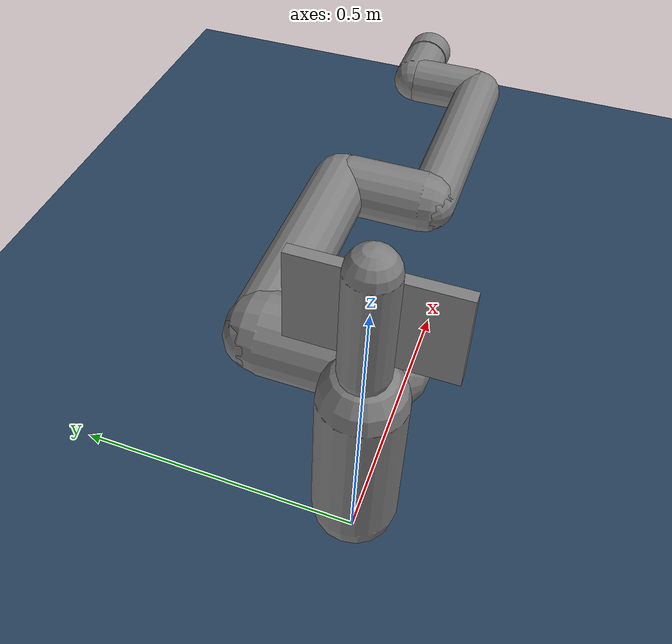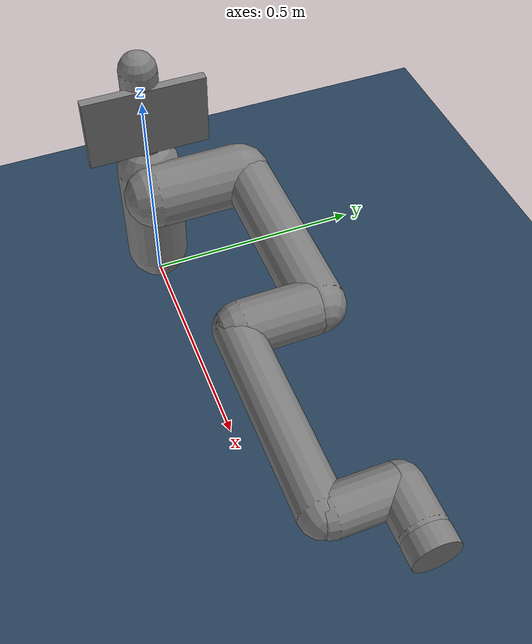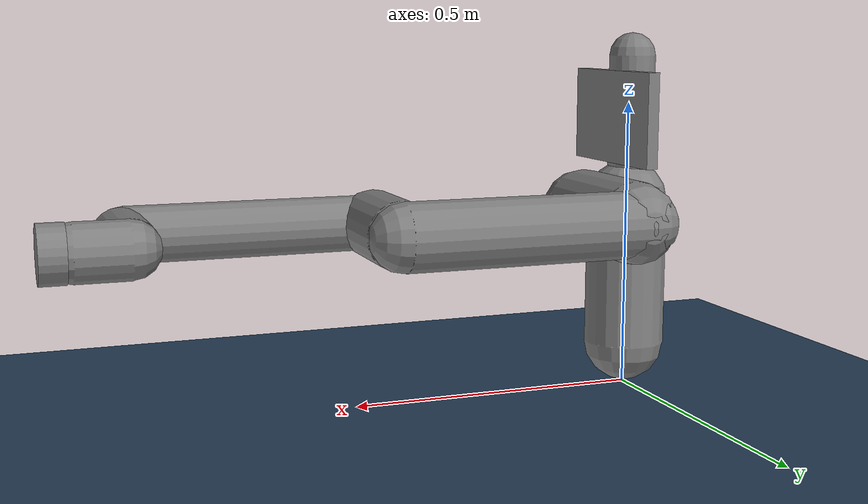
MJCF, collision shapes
<mujoco model="sawyer scene">
  <include file="sawyer_robonet.xml"/>

  <statistic center="0.3 0 0.4" extent="0.8"/>

  <visual>
    <headlight diffuse="0.6 0.6 0.6" ambient="0.3 0.3 0.3" specular="0 0 0"/>
    <rgba haze="0.15 0.25 0.35 1"/>
    <global azimuth="140" elevation="-20"/>
  </visual>

  <asset>
    <texture type="skybox" builtin="gradient" rgb1="0.3 0.5 0.7" rgb2="0 0 0" width="512" height="3072"/>
    <texture type="2d" name="groundplane" builtin="checker" mark="edge" rgb1="0.2 0.3 0.4" rgb2="0.1 0.2 0.3"
      markrgb="0.8 0.8 0.8" width="300" height="300"/>
    <material name="groundplane" texture="groundplane" texuniform="true" texrepeat="5 5" reflectance="0.2"/>
  </asset>

  <worldbody>
    <light pos="0 0 1.5" dir="0 0 -1" directional="true"/>
    <geom name="floor" size="0 0 0.05" type="plane" material="groundplane"/>
  </worldbody>
</mujoco>

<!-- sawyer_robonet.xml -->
<mujoco model="sawyer">
  <compiler angle="radian" meshdir="assets" autolimits="true"/>

  <option integrator="implicitfast"/>

  <default>
    <default class="sawyer">
      <material specular="0.5" shininess="0.25"/>
      <joint axis="0 0 1"/>
      <general dyntype="none" biastype="affine"/>
      <default class="visual">
        <geom group="2" type="mesh" contype="0" conaffinity="0"/>
      </default>
      <default class="collision">
        <geom group="3" type="capsule" rgba="0.5 0.5 0.5 1"/>
        <default class="eef_collision">
          <geom type="cylinder"/>
        </default>
      </default>
      <site size="0.001" rgba="0.5 0.5 0.5 0.3" group="4"/>

      <default class="large_joint">
        <joint frictionloss="0.3" armature="1" damping="0.1"/>
        <general gainprm="800" biasprm="0 -800 -80" forcerange="-80 80"/>
      </default>
      <default class="medium_joint">
        <joint frictionloss="0.3" armature="1" damping="0.1"/>
        <general gainprm="800" biasprm="0 -800 -80" forcerange="-40 40"/>
      </default>
      <default class="small_joint">
        <joint frictionloss="0.1" armature="1" damping="0.1"/>
        <general gainprm="500" biasprm="0 -500 -50" forcerange="-9 9"/>
      </default>
    </default>
  </default>

  <asset>
    <material class="sawyer" name="red" rgba="0.5 0.1 0.1 1"/>
    <material class="sawyer" name="black" rgba="0.2 0.2 0.2 1"/>
    <material class="sawyer" name="white" rgba="1 1 1 1"/>
    <material class="sawyer" name="off_white" rgba="0.792157 0.819608 0.929412 1"/>
    <material class="sawyer" name="Mtl3" rgba="0.168627 0.152941 0.141176 1"/>
    <material class="sawyer" name="Mtl4" rgba="1 0.403922 0.121569 1"/>
    <material class="sawyer" name="Mtl7" rgba="0.250980 0.250980 0.250980 1"/>
    <material class="sawyer" name="dark_black" specular="0.0" shininess="0.25" rgba="0 0 0 1"/>
    <material class="sawyer" name="Mtl5.001" rgba="0.870588 0.309804 0.086275 1"/>
    <material class="sawyer" name="Mtl7.001" rgba="0.698039 0.698039 0.698039 1"/>
    <material class="sawyer" name="Mtl5.002" rgba="0.105882 0.105882 0.105882 1"/>
    <material class="sawyer" name="Mtl6.002" rgba="0.749020 0.749020 0.749020 1"/>
    <material class="sawyer" name="Mtl4_001" rgba="0.866667 0.905882 1 1"/>
    <material class="sawyer" name="Mtl5_001" rgba="0.501961 0.501961 0.501961 1"/>

    <mesh file="pedestal.obj"/>
    <mesh file="base_0.obj"/>
    <mesh file="base_1.obj"/>
    <mesh file="l0_0.obj"/>
    <mesh file="l0_1.obj"/>
    <mesh file="l0_2.obj"/>
    <mesh file="l0_3.obj"/>
    <mesh file="l0_4.obj"/>
    <mesh file="l0_5.obj"/>
    <mesh file="l0_6.obj"/>
    <mesh file="l1_0.obj"/>
    <mesh file="l1_1.obj"/>
    <mesh file="l1_2.obj"/>
    <mesh file="l2_0.obj"/>
    <mesh file="l2_1.obj"/>
    <mesh file="l2_2.obj"/>
    <mesh file="l2_3.obj"/>
    <mesh file="l2_4.obj"/>
    <mesh file="l3_0.obj"/>
    <mesh file="l3_1.obj"/>
    <mesh file="l3_2.obj"/>
    <mesh file="l3_3.obj"/>
    <mesh file="l4_0.obj"/>
    <mesh file="l4_1.obj"/>
    <mesh file="l4_2.obj"/>
    <mesh file="l4_3.obj"/>
    <mesh file="l4_4.obj"/>
    <mesh file="l4_5.obj"/>
    <mesh file="l4_6.obj"/>
    <mesh file="l4_7.obj"/>
    <mesh file="l5_0.obj"/>
    <mesh file="l5_1.obj"/>
    <mesh file="l5_2.obj"/>
    <mesh file="l5_3.obj"/>
    <mesh file="l5_4.obj"/>
    <mesh file="l6_0.obj"/>
    <mesh file="l6_1.obj"/>
    <mesh file="l6_2.obj"/>
    <mesh file="l6_3.obj"/>
    <mesh file="l6_4.obj"/>
    <mesh file="l6_5.obj"/>
    <mesh file="head_0.obj"/>
    <mesh file="head_2.obj"/>
    <mesh file="head_3.obj"/>
    <mesh file="head_5.obj"/>
    <mesh file="head_6.obj"/>
    <mesh file="head_7.obj"/>
    <mesh file="head_8.obj"/>
    <mesh file="head_9.obj"/>
  </asset>

  <worldbody>
    <light name="top" pos="0 0 2" mode="trackcom"/>
    <body name="base" childclass="sawyer">
      <inertial mass="2.0687" pos="-0.0006241 -2.8025E-05 0.065404"
        fullinertia="0.0067599 0.0067877 0.0074031 -4.2024E-05 -6.1904E-07 1.5888E-05"/>
      <geom mesh="base_0" material="black" class="visual"/>
      <geom mesh="base_1" material="red" class="visual"/>
      <body name="right_l0" pos="0 0 0.08">
        <inertial mass="5.3213" pos="0.0243645 0.0109688 0.143631" quat="0.894821 0.0089945 -0.17028 0.412576"
          diaginertia="0.0651599 0.0510954 0.0186221"/>
        <joint name="right_j0" class="large_joint" range="-3.0503 3.0503"/>
        <geom mesh="l0_0" material="Mtl7" class="visual"/>
        <geom mesh="l0_1" material="off_white" class="visual"/>
        <geom mesh="l0_2" material="red" class="visual"/>
        <geom mesh="l0_3" material="Mtl4" class="visual"/>
        <geom mesh="l0_4" material="Mtl3" class="visual"/>
        <geom mesh="l0_5" material="white" class="visual"/>
        <geom mesh="l0_6" material="black" class="visual"/>
        <geom class="collision" fromto="0 0 -0.005 0 0 0.25" size="0.07"/>
        <body name="head" pos="0 0 0.2965">
          <inertial mass="1.5795" pos="0.00532226 -2.65473e-05 0.1021"
            quat="0.999993 7.08384e-05 -0.00359812 -0.000626267" diaginertia="0.0118334 0.00827097 0.00496582"/>
          <geom mesh="head_0" material="black" class="visual"/>
          <geom mesh="head_2" material="off_white" class="visual"/>
          <geom mesh="head_3" material="Mtl7" class="visual"/>
          <geom mesh="head_5" material="black" class="visual"/>
          <geom mesh="head_6" material="white" class="visual"/>
          <geom mesh="head_7" material="dark_black" class="visual"/>
          <geom mesh="head_8" material="red" class="visual"/>
          <geom mesh="head_9" material="Mtl5.001" class="visual"/>
          <geom class="collision" fromto="-0.005 0 0.02 -0.005 0 0.205" size="0.04"/>
          <geom class="collision" type="box" pos="0.025 0 0.1" size="0.01 0.13 0.08"/>
        </body>
        <body name="right_l1" pos="0.081 0.05 0.237" quat="1 -1 1 1">
          <inertial mass="4.505" pos="-0.0030849 -0.026811 0.092521" quat="0.424888 0.891987 0.132364 -0.0794294"
            diaginertia="0.0224339 0.0221624 0.00970971"/>
          <joint name="right_j1" class="large_joint" range="-3.8095 2.2736"/>
          <geom mesh="l1_0" material="black" class="visual"/>
          <geom mesh="l1_1" material="red" class="visual"/>
          <geom mesh="l1_2" material="white" class="visual"/>
          <geom class="collision" fromto="0 0 -0.06 0 0 0.13" size="0.068"/>
          <body name="right_l2" pos="0 -0.14 0.1425" quat="1 1 0 0">
            <inertial mass="1.745" pos="-0.00016044 -0.014967 0.13582" quat="0.707831 -0.0524761 0.0516006 0.702537"
              diaginertia="0.0257928 0.025506 0.00292516"/>
            <joint name="right_j2" class="medium_joint" range="-3.0426 3.0426"/>
            <geom mesh="l2_0" material="off_white" class="visual"/>
            <geom mesh="l2_1" material="Mtl5.002" class="visual"/>
            <geom mesh="l2_2" material="white" class="visual"/>
            <geom mesh="l2_3" material="black" class="visual"/>
            <geom mesh="l2_4" material="red" class="visual"/>
            <geom class="collision" fromto="0 0 -0.15 0 0 0.26" size="0.055"/>
            <body name="right_l3" pos="0 -0.042 0.26" quat="1 -1 0 0">
              <inertial mass="2.5097" pos="-0.0048135 -0.0281 -0.084154" quat="0.902999 0.385391 -0.0880901 0.168247"
                diaginertia="0.0102404 0.0096997 0.00369622"/>
              <joint name="right_j3" class="medium_joint" range="-3.0439 3.0439"/>
              <geom mesh="l3_0" material="off_white" class="visual"/>
              <geom mesh="l3_1" material="red" class="visual"/>
              <geom mesh="l3_2" material="white" class="visual"/>
              <geom mesh="l3_3" material="black" class="visual"/>
              <geom class="collision" fromto="0 0 -0.115 0 0 0.03" size="0.055"/>
              <body name="right_l4" pos="0 -0.125 -0.1265" quat="1 1 0 0">
                <inertial mass="1.1136" pos="-0.00188917 0.00689948 0.134095"
                  quat="0.803247 0.031244 -0.0298409 0.594077" diaginertia="0.0136555 0.0135498 0.00127385"/>
                <joint name="right_j4" class="small_joint" range="-2.9761 2.9761"/>
                <geom mesh="l4_0" material="Mtl7" class="visual"/>
                <geom mesh="l4_1" material="black" class="visual"/>
                <geom mesh="l4_2" material="Mtl6.002" class="visual"/>
                <geom mesh="l4_3" material="white" class="visual"/>
                <geom mesh="l4_4" material="off_white" class="visual"/>
                <geom mesh="l4_5" material="dark_black" class="visual"/>
                <geom mesh="l4_6" material="red" class="visual"/>
                <geom mesh="l4_7" material="black" class="visual"/>
                <geom class="collision" fromto="0 0 -0.13 0 0 0.27" size="0.045"/>
                <body name="right_l5" pos="0 0.031 0.275" quat="1 -1 0 0">
                  <inertial mass="1.5625" pos="0.0061133 -0.023697 0.076416" quat="0.404076 0.9135 0.0473125 0.00158335"
                    diaginertia="0.00474131 0.00422857 0.00190672"/>
                  <joint name="right_j5" class="small_joint" range="-2.9761 2.9761"/>
                  <geom mesh="l5_0" material="Mtl5_001" class="visual"/>
                  <geom mesh="l5_1" material="Mtl4_001" class="visual"/>
                  <geom mesh="l5_2" material="white" class="visual"/>
                  <geom mesh="l5_3" material="red" class="visual"/>
                  <geom mesh="l5_4" material="black" class="visual"/>
                  <geom fromto="0 0 -0.02 0 0 0.1" size="0.045" class="collision"/>
                  <geom fromto="0 0 0.105 0 -0.082 0.105" size="0.045" class="collision"/>
                  <body name="right_l6" pos="0 -0.11 0.1053" quat="0.0616248 0.06163 -0.704416 0.704416">

                    <!-- TCP LINK -->
                    <body name="tcp_link" pos="0. 0. 0." quat="0 -1 0 0 ">
                      <geom size="0.005 0.005 0.005" pos="0.0 0.0 0.0" contype="0" conaffinity="0" type="box" rgba="1.00 0.00 0.0 1.0" />
                    </body>

                    <inertial mass="0.3292" pos="-8.0726e-06 0.0085838 -0.0049566"
                      quat="0.479044 0.515636 -0.513069 0.491321" diaginertia="0.000360268 0.000311078 0.000214984"/>
                    <joint name="right_j6" class="small_joint" range="-4.7124 4.7124"/>
                    <geom mesh="l6_0" material="Mtl4" class="visual"/>
                    <geom mesh="l6_1" material="white" class="visual"/>
                    <geom mesh="l6_2" material="red" class="visual"/>
                    <geom mesh="l6_3" material="black" class="visual"/>
                    <geom mesh="l6_4" material="black" class="visual"/>
                    <geom mesh="l6_5" material="black" class="visual"/>
                    <geom class="eef_collision" size="0.045 0.02"/>
                    <site name="attachment_site" pos="0 0 0.0245" quat="0 0 0 1"/>
                  </body>
                </body>
              </body>
            </body>
          </body>
        </body>
      </body>
    </body>
  </worldbody>

  <contact>
    <exclude body1="base" body2="right_l0"/>
  </contact>

  <actuator>
    <general name="a0" joint="right_j0" class="large_joint" ctrlrange="-3.0503 3.0503"/>
    <general name="a1" joint="right_j1" class="large_joint" ctrlrange="-3.8095 2.2736"/>
    <general name="a2" joint="right_j2" class="medium_joint" ctrlrange="-3.0426 3.0426"/>
    <general name="a3" joint="right_j3" class="medium_joint" ctrlrange="-3.0439 3.0439"/>
    <general name="a4" joint="right_j4" class="small_joint" ctrlrange="-2.9761 2.9761"/>
    <general name="a5" joint="right_j5" class="small_joint" ctrlrange="-2.9761 2.9761"/>
    <general name="a6" joint="right_j6" class="small_joint" ctrlrange="-4.7124 4.7124"/>
  </actuator>

  <keyframe>
    <key name="home" qpos="0 -1.18 0 2.18 0 0.57 3.3161" ctrl="0 -1.18 0 2.18 0 0.57 3.3161"/>
  </keyframe>
</mujoco>
